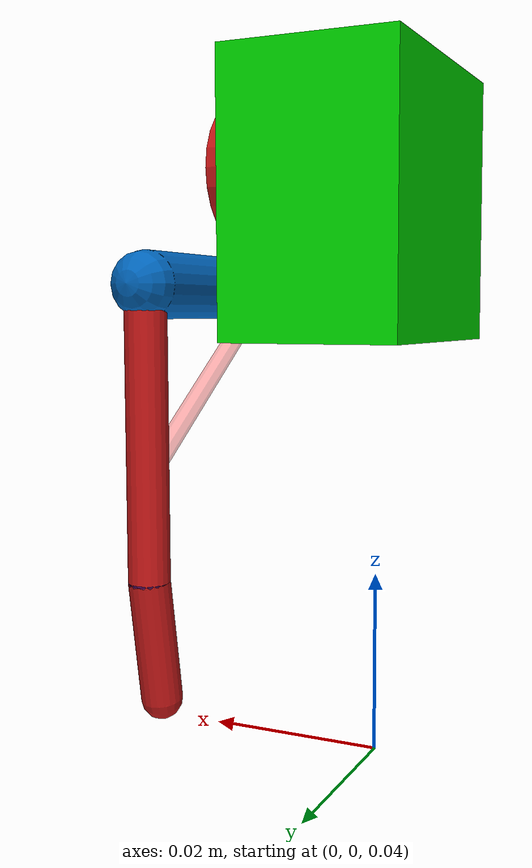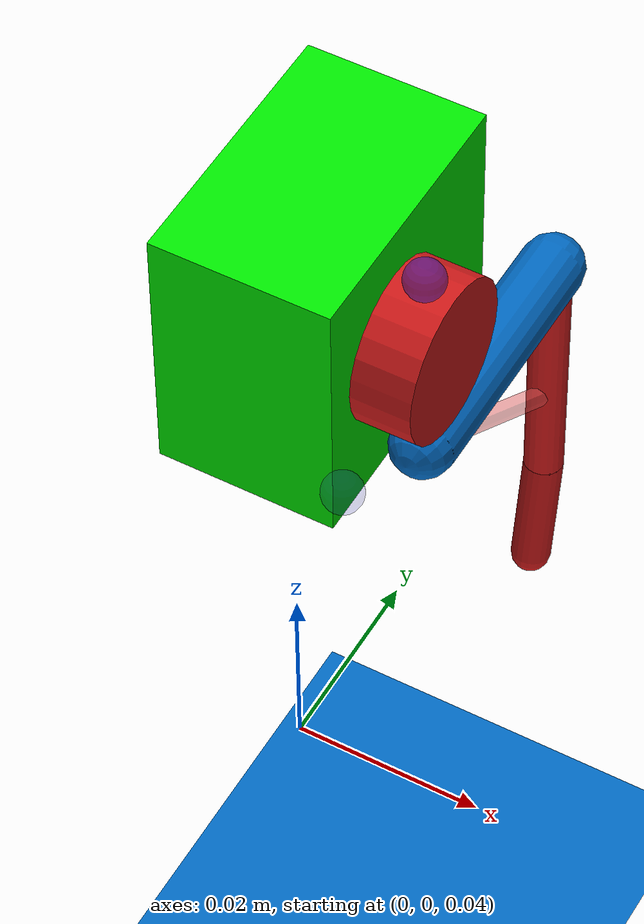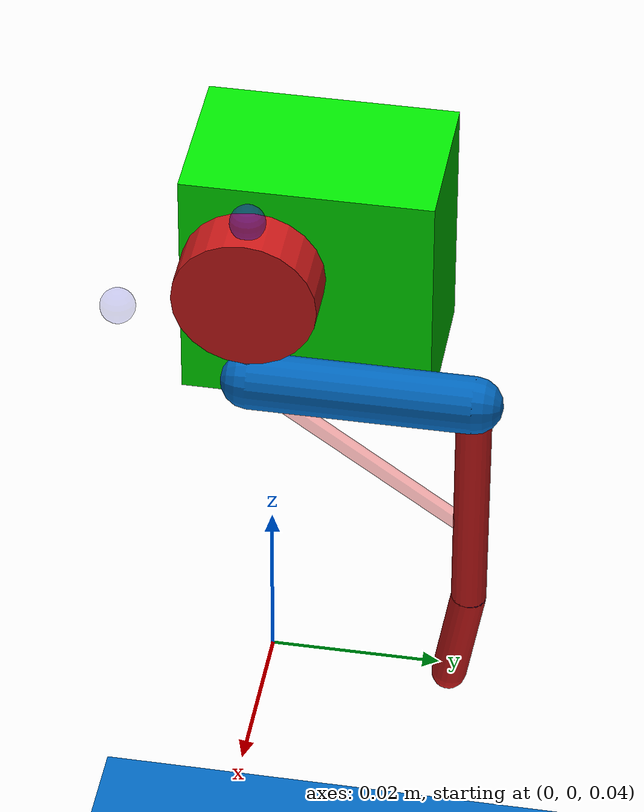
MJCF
<mujoco>

    <include file="basic_scene.xml" />

    <worldbody>
        <light diffuse=".5 .5 .5" pos="0 0 3" dir="0 0 -1"/>
        <geom type="plane" size="0 0 0.03" material="matplane"/>
        <camera name="body_cam" mode="fixed" pos="0.3 -0.01 0.1" euler="90 90 0"/>
        <body pos="0 0 0.1">
            <include file="leg_fl_assets/fl_t3.xml"/>
        </body>
    </worldbody>

    <contact>
        <exclude body1="main_leg_fl" body2="servo2_fl"/>
    </contact>

    <include file="leg_fl_assets/fl_t3_tendon.xml"/>

    <include file="leg_fl_assets/fl_sensor_actuator.xml"/>
</mujoco>

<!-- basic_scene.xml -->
<mujoco>
    <compiler angle="degree"/>

    <asset>
        <texture type="skybox" builtin="gradient" rgb1="1 1 1" rgb2=".6 .8 1" width="256" height="256"/>
        <texture name="texplane" type="2d" builtin="checker" rgb1=".2 .3 .4" rgb2=".1 0.15 0.2" width="512" height="512" mark="cross" markrgb=".8 .8 .8"/>

        <material name="matplane" reflectance="0" texture="texplane" texrepeat="2 2" texuniform="true"/>
    </asset>

    <option timestep="0.002" o_solimp="0.9 0.95 0.001 0.1 2" o_solref="0.008 2" cone="elliptic"
        impratio="3.0" noslip_iterations="5" noslip_tolerance="1e-8">
        <flag override="enable"/>
    </option>

    <default>
        <geom type="box" rgba="0 0.4 0.74 1.0"/>
    </default>
</mujoco>

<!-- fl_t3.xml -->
<mujoco>
    <!-- Front left leg type 3 -->
    <!-- IMPORTANT MODEL PARAMETERS
        'lr0':0.033, 'rp': 0.008, 'd1': 0.0128, 'l1': 0.025,
        'l2': 0.018, 'l3': 0.028, 'l4': 0.015,'theta3':np.pi/10
    -->
        <body pos="0 0.0055 0.0">
            <geom name="servo_box_fl" mass=".04" type="box" size=".0091 .014 .014" rgba="0 .9 0 1"/>

            <body name ="main_leg_fl" pos="0.0136 -0.0055 -0.0085">

                <joint name="m1_fl" pos="0 0 0" type="hinge" axis="1 0 0" damping="0.01" armature="0.00065" limited="true" range="-180 180" ref="90"/>
                <geom name="leg1_fl" mass="0.001" type="capsule" fromto="0 0 0 0 0.025 0" size="0.0032"/>
                <site name="router_shoulder_fl" pos="0 0 0" size="0.002" rgba=".1 .1 .8 .5"/>
                <site name="knee_start_fl" pos="0 0.0068 0" size="0.002" rgba=".1 .1 .8 .5"/>
                <body name="lower_leg_fl" pos="0 0.025 0">
                    <joint name="knee1_fl" pos="0 0 0" type="hinge" axis="1 0 0" damping="0.005" armature="0.000065" limited="true" range="-70 70" />
                    <geom name="leg2_fl" type="capsule" mass="0.0015" fromto="0 0 0 0 0 -0.028" size="0.002" rgba=".8 .1 .1 1"/>
                    <geom name="ankle_fl" type="capsule" mass="0.001" fromto="0 0 -0.028 0 -0.002 -0.040" friction="1.4 0.005 0.0001" size="0.002" rgba=".8 .1 .1 1"/>
                    <site name="m2_pickup_fl" pos="0 0 -0.018" size="0.002" rgba=".1 .1 .8 0.5"/>
                    <site name="knee_pickup_fl" pos="0 0 -0.028" size="0.002" rgba=".1 .1 .8 0.5"/>
                    <site name="ankle_start_fl" pos="0 0 -0.010" size="0.002" rgba=".1 .1 .8 0.5"/>
                </body>
            </body>

            <site name="x1_fl" pos="0.0136 -0.02 0.00" size="0.002" rgba=".1 .1 .8 0.2"/>
            <body name="servo2_fl" pos="0.0136 -0.0055 0.0043">
                <geom name="motor2_fl" type="cylinder" mass="0.002" fromto="-0.003 0 0 0.003 0 0" size="0.008" rgba=".8 .1 .1 1" />
                <joint name="m2_fl" pos="0 0 0" type="hinge" axis="1 0 0" armature="0.00065" damping="0.01" limited="true" range="-180 180"/>

                <site name="s1_fl" pos="0.0 0 0.009" size="0.002" rgba=".1 .1 .8 0.5"/>
            </body>
        </body>
</mujoco>

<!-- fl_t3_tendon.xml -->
<mujoco>
    <tendon>
        <spatial name="m2_tendon_fl" limited="true" range="0 0.062" width="0.001" rgba="1 .4 .4 0.5">
            <site site="s1_fl"/>
            <geom geom="motor2_fl" sidesite="x1_fl"/>
            <site site="router_shoulder_fl"/>
            <site site="m2_pickup_fl"/>
        </spatial>
    </tendon>
</mujoco>

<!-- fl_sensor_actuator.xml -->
<mujoco>
    <sensor>
        <!-- tendonpos name="tendon_length" tendon="m2_tendon"/-->
        <jointpos name="m1_fl" joint="m1_fl"/>
        <jointpos name="m2_fl" joint="m2_fl"/>
    </sensor>

    <actuator>
        <position name="m1_fl" gear="1" ctrllimited="true" ctrlrange="-3.00 3.00"  forcelimited="true" forcerange="-.4 .4" joint="m1_fl" kp="300"/>
        <position name="m2_fl" gear="1" ctrllimited="true"  ctrlrange="-3.00 3.00 " forcelimited="true" forcerange="-0.4 0.4" joint="m2_fl" kp="300"/>
    </actuator>
</mujoco>
